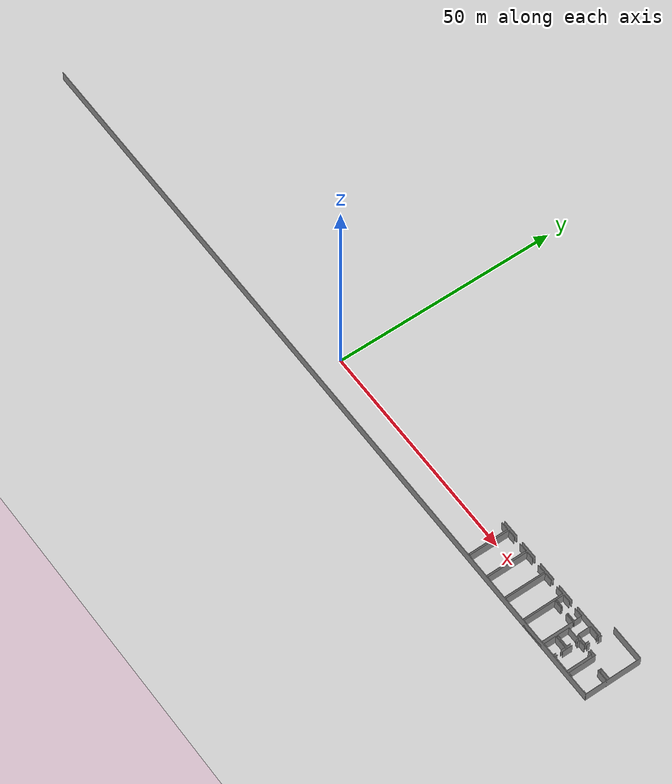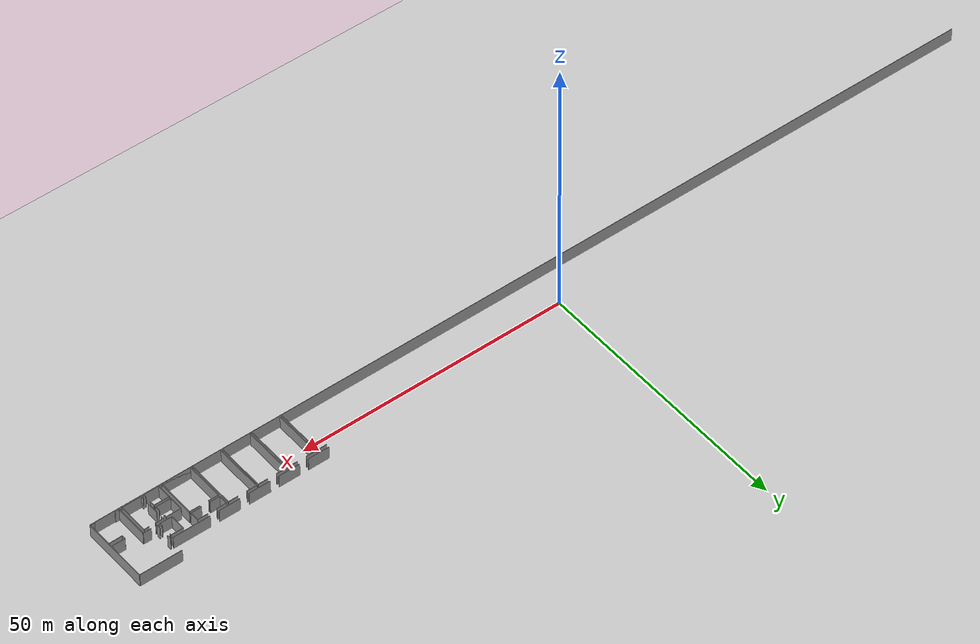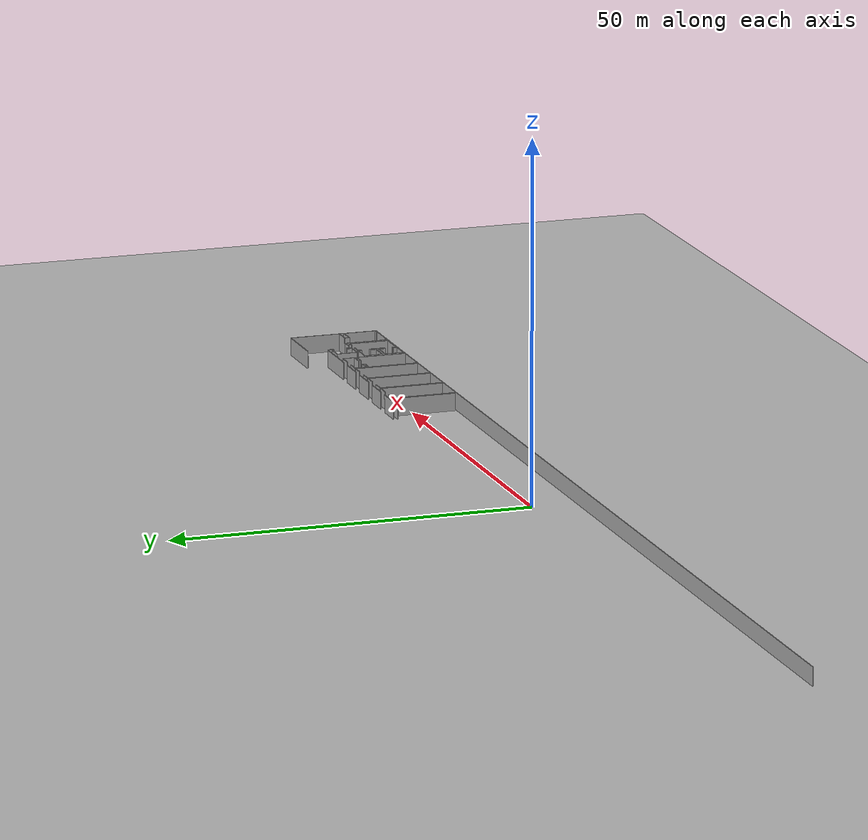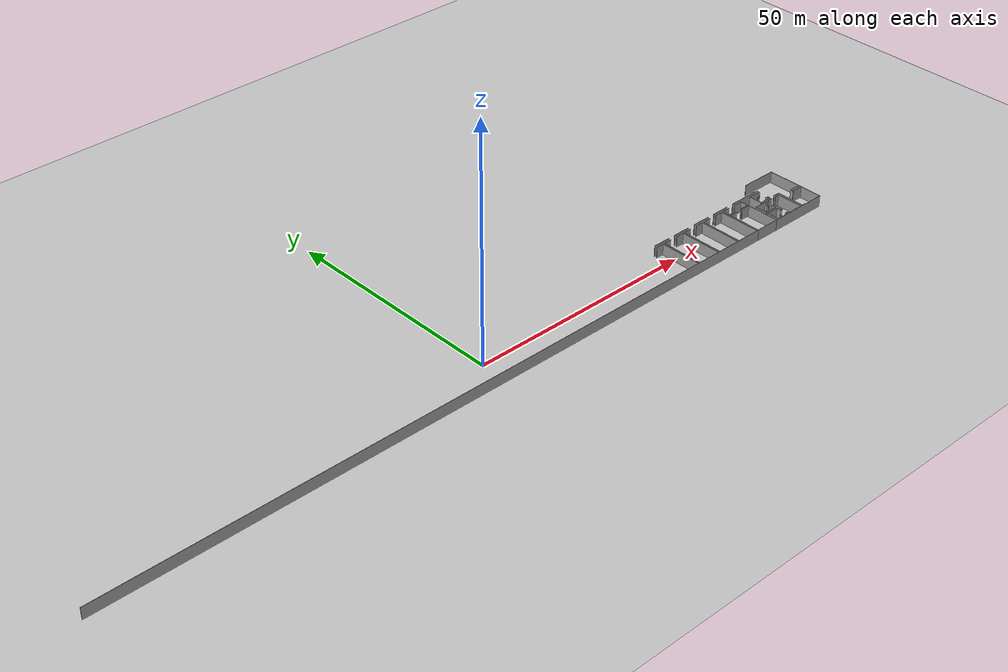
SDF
<sdf version="1.6">
 <world name="default">
  <model name="ground_plane">
   <static>1</static>
   <link name="link">
    <collision name="collision">
     <geometry><plane><normal>0 0 1</normal><size>100 100</size></plane></geometry>
     <surface><friction><ode><mu>100</mu><mu2>50</mu2></ode></friction></surface>
    </collision>
    <visual name="visual">
     <cast_shadows>0</cast_shadows>
     <geometry><plane><normal>0 0 1</normal><size>100 100</size></plane></geometry>
     <material>
      <script><uri>file://media/materials/scripts/gazebo.material</uri><name>Gazebo/Grey</name></script>
     </material>
    </visual>
   </link>
  </model>
  <model name="50015850_PLAN5">
   <static>1</static>
   <link name="Wall_1">
    <collision name="Wall_1_Collision">
     <geometry><box><size>6.90260770256 0.1 2.5</size></box></geometry>
     <pose>3.45130385128 0 1.25 0 0 0</pose>
    </collision>
    <visual name="Wall_1_Visual">
     <pose>3.45130385128 0 1.25 0 0 0</pose>
     <geometry><box><size>6.90260770256 0.1 2.5</size></box></geometry>
     <material>
      <script><uri>file://media/materials/scripts/gazebo.material</uri><name>Gazebo/Grey</name></script>
      <ambient>1 1 1 1</ambient>
     </material>
    </visual>
    <pose>163.548252014 -2.89976524332 0 0 0 3.14159265359</pose>
   </link>
   <link name="Wall_2">
    <collision name="Wall_2_Collision">
     <geometry><box><size>3.93909015925 0.1 2.5</size></box></geometry>
     <pose>1.96954507963 0 1.25 0 0 0</pose>
    </collision>
    <visual name="Wall_2_Visual">
     <pose>1.96954507963 0 1.25 0 0 0</pose>
     <geometry><box><size>3.93909015925 0.1 2.5</size></box></geometry>
     <material>
      <script><uri>file://media/materials/scripts/gazebo.material</uri><name>Gazebo/Grey</name></script>
      <ambient>1 1 1 1</ambient>
     </material>
    </visual>
    <pose>155.024681175 -2.89976524332 0 0 0 3.14159265359</pose>
   </link>
   <link name="Wall_3">
    <collision name="Wall_3_Collision">
     <geometry><box><size>4.01954190724 0.1 2.5</size></box></geometry>
     <pose>2.00977095362 0 1.25 0 0 0</pose>
    </collision>
    <visual name="Wall_3_Visual">
     <pose>2.00977095362 0 1.25 0 0 0</pose>
     <geometry><box><size>4.01954190724 0.1 2.5</size></box></geometry>
     <material>
      <script><uri>file://media/materials/scripts/gazebo.material</uri><name>Gazebo/Grey</name></script>
      <ambient>1 1 1 1</ambient>
     </material>
    </visual>
    <pose>149.454222448 -2.89976524332 0 0 0 3.14159265359</pose>
   </link>
   <link name="Wall_4">
    <collision name="Wall_4_Collision">
     <geometry><box><size>3.9758898547 0.1 2.5</size></box></geometry>
     <pose>1.98794492735 0 1.25 0 0 0</pose>
    </collision>
    <visual name="Wall_4_Visual">
     <pose>1.98794492735 0 1.25 0 0 0</pose>
     <geometry><box><size>3.9758898547 0.1 2.5</size></box></geometry>
     <material>
      <script><uri>file://media/materials/scripts/gazebo.material</uri><name>Gazebo/Grey</name></script>
      <ambient>1 1 1 1</ambient>
     </material>
    </visual>
    <pose>143.853055009 -2.89976524332 0 0 0 3.14159265359</pose>
   </link>
   <link name="Wall_5">
    <collision name="Wall_5_Collision">
     <geometry><box><size>3.92969989214 0.1 2.5</size></box></geometry>
     <pose>1.96484994607 0 1.25 0 0 0</pose>
    </collision>
    <visual name="Wall_5_Visual">
     <pose>1.96484994607 0 1.25 0 0 0</pose>
     <geometry><box><size>3.92969989214 0.1 2.5</size></box></geometry>
     <material>
      <script><uri>file://media/materials/scripts/gazebo.material</uri><name>Gazebo/Grey</name></script>
      <ambient>1 1 1 1</ambient>
     </material>
    </visual>
    <pose>138.263815748 -2.89976524332 0 0 0 3.14159265359</pose>
   </link>
   <link name="Wall_136">
    <collision name="Wall_136_Collision">
     <geometry><box><size>1.72857052218 0.1 2.5</size></box></geometry>
     <pose>0.864285261088 0 1.25 0 0 0</pose>
    </collision>
    <visual name="Wall_136_Visual">
     <pose>0.864285261088 0 1.25 0 0 0</pose>
     <geometry><box><size>1.72857052218 0.1 2.5</size></box></geometry>
     <material>
      <script><uri>file://media/materials/scripts/gazebo.material</uri><name>Gazebo/Grey</name></script>
      <ambient>1 1 1 1</ambient>
     </material>
    </visual>
    <pose>134.312036038 -3.48399213248 0 0 0 0.0</pose>
   </link>
   <link name="Wall_137">
    <collision name="Wall_137_Collision">
     <geometry><box><size>8.93863751061 0.1 2.5</size></box></geometry>
     <pose>4.46931875531 0 1.25 0 0 0</pose>
    </collision>
    <visual name="Wall_137_Visual">
     <pose>4.46931875531 0 1.25 0 0 0</pose>
     <geometry><box><size>8.93863751061 0.1 2.5</size></box></geometry>
     <material>
      <script><uri>file://media/materials/scripts/gazebo.material</uri><name>Gazebo/Grey</name></script>
      <ambient>1 1 1 1</ambient>
     </material>
    </visual>
    <pose>136.04060656 -3.48399213248 0 0 0 -1.56690653318</pose>
   </link>
   <link name="Wall_138">
    <collision name="Wall_138_Collision">
     <geometry><box><size>8.9957236216 0.1 2.5</size></box></geometry>
     <pose>4.4978618108 0 1.25 0 0 0</pose>
    </collision>
    <visual name="Wall_138_Visual">
     <pose>4.4978618108 0 1.25 0 0 0</pose>
     <geometry><box><size>8.9957236216 0.1 2.5</size></box></geometry>
     <material>
      <script><uri>file://media/materials/scripts/gazebo.material</uri><name>Gazebo/Grey</name></script>
      <ambient>1 1 1 1</ambient>
     </material>
    </visual>
    <pose>136.405050441 -12.4651989087 0 0 0 1.57079632679</pose>
   </link>
   <link name="Wall_139">
    <collision name="Wall_139_Collision">
     <geometry><box><size>1.78897278091 0.1 2.5</size></box></geometry>
     <pose>0.894486390457 0 1.25 0 0 0</pose>
    </collision>
    <visual name="Wall_139_Visual">
     <pose>0.894486390457 0 1.25 0 0 0</pose>
     <geometry><box><size>1.78897278091 0.1 2.5</size></box></geometry>
     <material>
      <script><uri>file://media/materials/scripts/gazebo.material</uri><name>Gazebo/Grey</name></script>
      <ambient>1 1 1 1</ambient>
     </material>
    </visual>
    <pose>136.405050441 -3.4694752871 0 0 0 0.0</pose>
   </link>
   <link name="Wall_140">
    <collision name="Wall_140_Collision">
     <geometry><box><size>1.79176448195 0.1 2.5</size></box></geometry>
     <pose>0.895882240975 0 1.25 0 0 0</pose>
    </collision>
    <visual name="Wall_140_Visual">
     <pose>0.895882240975 0 1.25 0 0 0</pose>
     <geometry><box><size>1.79176448195 0.1 2.5</size></box></geometry>
     <material>
      <script><uri>file://media/materials/scripts/gazebo.material</uri><name>Gazebo/Grey</name></script>
      <ambient>1 1 1 1</ambient>
     </material>
    </visual>
    <pose>139.876403781 -3.4694752871 0 0 0 0.0</pose>
   </link>
   <link name="Wall_141">
    <collision name="Wall_141_Collision">
     <geometry><box><size>8.99574540246 0.1 2.5</size></box></geometry>
     <pose>4.49787270123 0 1.25 0 0 0</pose>
    </collision>
    <visual name="Wall_141_Visual">
     <pose>4.49787270123 0 1.25 0 0 0</pose>
     <geometry><box><size>8.99574540246 0.1 2.5</size></box></geometry>
     <material>
      <script><uri>file://media/materials/scripts/gazebo.material</uri><name>Gazebo/Grey</name></script>
      <ambient>1 1 1 1</ambient>
     </material>
    </visual>
    <pose>141.668168263 -3.4694752871 0 0 0 -1.56859576271</pose>
   </link>
   <link name="Wall_142">
    <collision name="Wall_142_Collision">
     <geometry><box><size>8.99427701288 0.1 2.5</size></box></geometry>
     <pose>4.49713850644 0 1.25 0 0 0</pose>
    </collision>
    <visual name="Wall_142_Visual">
     <pose>4.49713850644 0 1.25 0 0 0</pose>
     <geometry><box><size>8.99427701288 0.1 2.5</size></box></geometry>
     <material>
      <script><uri>file://media/materials/scripts/gazebo.material</uri><name>Gazebo/Grey</name></script>
      <ambient>1 1 1 1</ambient>
     </material>
    </visual>
    <pose>142.038449337 -12.4651989087 0 0 0 1.57079632679</pose>
   </link>
   <link name="Wall_143">
    <collision name="Wall_143_Collision">
     <geometry><box><size>1.78567349787 0.1 2.5</size></box></geometry>
     <pose>0.892836748937 0 1.25 0 0 0</pose>
    </collision>
    <visual name="Wall_143_Visual">
     <pose>0.892836748937 0 1.25 0 0 0</pose>
     <geometry><box><size>1.78567349787 0.1 2.5</size></box></geometry>
     <material>
      <script><uri>file://media/materials/scripts/gazebo.material</uri><name>Gazebo/Grey</name></script>
      <ambient>1 1 1 1</ambient>
     </material>
    </visual>
    <pose>142.038449337 -3.47092189582 0 0 0 0.0</pose>
   </link>
   <link name="Wall_144">
    <collision name="Wall_144_Collision">
     <geometry><box><size>1.80216991308 0.1 2.5</size></box></geometry>
     <pose>0.901084956538 0 1.25 0 0 0</pose>
    </collision>
    <visual name="Wall_144_Visual">
     <pose>0.901084956538 0 1.25 0 0 0</pose>
     <geometry><box><size>1.80216991308 0.1 2.5</size></box></geometry>
     <material>
      <script><uri>file://media/materials/scripts/gazebo.material</uri><name>Gazebo/Grey</name></script>
      <ambient>1 1 1 1</ambient>
     </material>
    </visual>
    <pose>145.459298268 -3.47092189582 0 0 0 0.0</pose>
   </link>
   <link name="Wall_145">
    <collision name="Wall_145_Collision">
     <geometry><box><size>8.9943384594 0.1 2.5</size></box></geometry>
     <pose>4.4971692297 0 1.25 0 0 0</pose>
    </collision>
    <visual name="Wall_145_Visual">
     <pose>4.4971692297 0 1.25 0 0 0</pose>
     <geometry><box><size>8.9943384594 0.1 2.5</size></box></geometry>
     <material>
      <script><uri>file://media/materials/scripts/gazebo.material</uri><name>Gazebo/Grey</name></script>
      <ambient>1 1 1 1</ambient>
     </material>
    </visual>
    <pose>147.261468181 -3.47092189582 0 0 0 -1.57449272951</pose>
   </link>
   <link name="Wall_146">
    <collision name="Wall_146_Collision">
     <geometry><box><size>9.01100183998 0.1 2.5</size></box></geometry>
     <pose>4.50550091999 0 1.25 0 0 0</pose>
    </collision>
    <visual name="Wall_146_Visual">
     <pose>4.50550091999 0 1.25 0 0 0</pose>
     <geometry><box><size>9.01100183998 0.1 2.5</size></box></geometry>
     <material>
      <script><uri>file://media/materials/scripts/gazebo.material</uri><name>Gazebo/Grey</name></script>
      <ambient>1 1 1 1</ambient>
     </material>
    </visual>
    <pose>147.553327835 -12.4659602817 0 0 0 1.57079632679</pose>
   </link>
   <link name="Wall_147">
    <collision name="Wall_147_Collision">
     <geometry><box><size>1.85724256075 0.1 2.5</size></box></geometry>
     <pose>0.928621280376 0 1.25 0 0 0</pose>
    </collision>
    <visual name="Wall_147_Visual">
     <pose>0.928621280376 0 1.25 0 0 0</pose>
     <geometry><box><size>1.85724256075 0.1 2.5</size></box></geometry>
     <material>
      <script><uri>file://media/materials/scripts/gazebo.material</uri><name>Gazebo/Grey</name></script>
      <ambient>1 1 1 1</ambient>
     </material>
    </visual>
    <pose>147.553327835 -3.45495844172 0 0 0 0.0</pose>
   </link>
   <link name="Wall_148">
    <collision name="Wall_148_Collision">
     <geometry><box><size>1.76638538164 0.1 2.5</size></box></geometry>
     <pose>0.883192690819 0 1.25 0 0 0</pose>
    </collision>
    <visual name="Wall_148_Visual">
     <pose>0.883192690819 0 1.25 0 0 0</pose>
     <geometry><box><size>1.76638538164 0.1 2.5</size></box></geometry>
     <material>
      <script><uri>file://media/materials/scripts/gazebo.material</uri><name>Gazebo/Grey</name></script>
      <ambient>1 1 1 1</ambient>
     </material>
    </visual>
    <pose>151.074678003 -3.45495844172 0 0 0 0.0</pose>
   </link>
   <link name="Wall_149">
    <collision name="Wall_149_Collision">
     <geometry><box><size>9.01100597148 0.1 2.5</size></box></geometry>
     <pose>4.50550298574 0 1.25 0 0 0</pose>
    </collision>
    <visual name="Wall_149_Visual">
     <pose>4.50550298574 0 1.25 0 0 0</pose>
     <geometry><box><size>9.01100597148 0.1 2.5</size></box></geometry>
     <material>
      <script><uri>file://media/materials/scripts/gazebo.material</uri><name>Gazebo/Grey</name></script>
      <ambient>1 1 1 1</ambient>
     </material>
    </visual>
    <pose>152.841063384 -3.45495844172 0 0 0 -1.56983873167</pose>
   </link>
   <link name="Wall_150">
    <collision name="Wall_150_Collision">
     <geometry><box><size>1.96840302011 0.1 2.5</size></box></geometry>
     <pose>0.984201510056 0 1.25 0 0 0</pose>
    </collision>
    <visual name="Wall_150_Visual">
     <pose>0.984201510056 0 1.25 0 0 0</pose>
     <geometry><box><size>1.96840302011 0.1 2.5</size></box></geometry>
     <material>
      <script><uri>file://media/materials/scripts/gazebo.material</uri><name>Gazebo/Grey</name></script>
      <ambient>1 1 1 1</ambient>
     </material>
    </visual>
    <pose>158.588922023 -5.14576486264 0 0 0 3.14159265359</pose>
   </link>
   <link name="Wall_151">
    <collision name="Wall_151_Collision">
     <geometry><box><size>1.86739420088 0.1 2.5</size></box></geometry>
     <pose>0.933697100438 0 1.25 0 0 0</pose>
    </collision>
    <visual name="Wall_151_Visual">
     <pose>0.933697100438 0 1.25 0 0 0</pose>
     <geometry><box><size>1.86739420088 0.1 2.5</size></box></geometry>
     <material>
      <script><uri>file://media/materials/scripts/gazebo.material</uri><name>Gazebo/Grey</name></script>
      <ambient>1 1 1 1</ambient>
     </material>
    </visual>
    <pose>155.055897468 -5.14576486264 0 0 0 3.14159265359</pose>
   </link>
   <link name="Wall_152">
    <collision name="Wall_152_Collision">
     <geometry><box><size>1.69080642091 0.1 2.5</size></box></geometry>
     <pose>0.845403210456 0 1.25 0 0 0</pose>
    </collision>
    <visual name="Wall_152_Visual">
     <pose>0.845403210456 0 1.25 0 0 0</pose>
     <geometry><box><size>1.69080642091 0.1 2.5</size></box></geometry>
     <material>
      <script><uri>file://media/materials/scripts/gazebo.material</uri><name>Gazebo/Grey</name></script>
      <ambient>1 1 1 1</ambient>
     </material>
    </visual>
    <pose>153.188503268 -5.14576486264 0 0 0 1.57079632679</pose>
   </link>
   <link name="Wall_153">
    <collision name="Wall_153_Collision">
     <geometry><box><size>1.81688979126 0.1 2.5</size></box></geometry>
     <pose>0.908444895628 0 1.25 0 0 0</pose>
    </collision>
    <visual name="Wall_153_Visual">
     <pose>0.908444895628 0 1.25 0 0 0</pose>
     <geometry><box><size>1.81688979126 0.1 2.5</size></box></geometry>
     <material>
      <script><uri>file://media/materials/scripts/gazebo.material</uri><name>Gazebo/Grey</name></script>
      <ambient>1 1 1 1</ambient>
     </material>
    </visual>
    <pose>153.188503268 -3.45495844172 0 0 0 0.0</pose>
   </link>
   <link name="Wall_154">
    <collision name="Wall_154_Collision">
     <geometry><box><size>1.91662965548 0.1 2.5</size></box></geometry>
     <pose>0.958314827739 0 1.25 0 0 0</pose>
    </collision>
    <visual name="Wall_154_Visual">
     <pose>0.958314827739 0 1.25 0 0 0</pose>
     <geometry><box><size>1.91662965548 0.1 2.5</size></box></geometry>
     <material>
      <script><uri>file://media/materials/scripts/gazebo.material</uri><name>Gazebo/Grey</name></script>
      <ambient>1 1 1 1</ambient>
     </material>
    </visual>
    <pose>156.654273206 -3.45495844172 0 0 0 0.0</pose>
   </link>
   <link name="Wall_155">
    <collision name="Wall_155_Collision">
     <geometry><box><size>1.69090243455 0.1 2.5</size></box></geometry>
     <pose>0.845451217275 0 1.25 0 0 0</pose>
    </collision>
    <visual name="Wall_155_Visual">
     <pose>0.845451217275 0 1.25 0 0 0</pose>
     <geometry><box><size>1.69090243455 0.1 2.5</size></box></geometry>
     <material>
      <script><uri>file://media/materials/scripts/gazebo.material</uri><name>Gazebo/Grey</name></script>
      <ambient>1 1 1 1</ambient>
     </material>
    </visual>
    <pose>158.570902861 -3.45495844172 0 0 0 -1.56013958994</pose>
   </link>
   <link name="Wall_156">
    <collision name="Wall_156_Collision">
     <geometry><box><size>5.40930144026 0.1 2.5</size></box></geometry>
     <pose>2.70465072013 0 1.25 0 0 0</pose>
    </collision>
    <visual name="Wall_156_Visual">
     <pose>2.70465072013 0 1.25 0 0 0</pose>
     <geometry><box><size>5.40930144026 0.1 2.5</size></box></geometry>
     <material>
      <script><uri>file://media/materials/scripts/gazebo.material</uri><name>Gazebo/Grey</name></script>
      <ambient>1 1 1 1</ambient>
     </material>
    </visual>
    <pose>158.579531756 -12.6408222829 0 0 0 3.14159265359</pose>
   </link>
   <link name="Wall_157">
    <collision name="Wall_157_Collision">
     <geometry><box><size>7.16479918787 0.1 2.5</size></box></geometry>
     <pose>3.58239959393 0 1.25 0 0 0</pose>
    </collision>
    <visual name="Wall_157_Visual">
     <pose>3.58239959393 0 1.25 0 0 0</pose>
     <geometry><box><size>7.16479918787 0.1 2.5</size></box></geometry>
     <material>
      <script><uri>file://media/materials/scripts/gazebo.material</uri><name>Gazebo/Grey</name></script>
      <ambient>1 1 1 1</ambient>
     </material>
    </visual>
    <pose>153.170230315 -12.6408222829 0 0 0 1.57079632679</pose>
   </link>
   <link name="Wall_158">
    <collision name="Wall_158_Collision">
     <geometry><box><size>1.85445085972 0.1 2.5</size></box></geometry>
     <pose>0.927225429859 0 1.25 0 0 0</pose>
    </collision>
    <visual name="Wall_158_Visual">
     <pose>0.927225429859 0 1.25 0 0 0</pose>
     <geometry><box><size>1.85445085972 0.1 2.5</size></box></geometry>
     <material>
      <script><uri>file://media/materials/scripts/gazebo.material</uri><name>Gazebo/Grey</name></script>
      <ambient>1 1 1 1</ambient>
     </material>
    </visual>
    <pose>153.170230315 -5.47602309498 0 0 0 0.0</pose>
   </link>
   <link name="Wall_159">
    <collision name="Wall_159_Collision">
     <geometry><box><size>2.00647167058 0.1 2.5</size></box></geometry>
     <pose>1.00323583529 0 1.25 0 0 0</pose>
    </collision>
    <visual name="Wall_159_Visual">
     <pose>1.00323583529 0 1.25 0 0 0</pose>
     <geometry><box><size>2.00647167058 0.1 2.5</size></box></geometry>
     <material>
      <script><uri>file://media/materials/scripts/gazebo.material</uri><name>Gazebo/Grey</name></script>
      <ambient>1 1 1 1</ambient>
     </material>
    </visual>
    <pose>156.595139902 -5.47602309498 0 0 0 0.0</pose>
   </link>
   <link name="Wall_160">
    <collision name="Wall_160_Collision">
     <geometry><box><size>7.16483320956 0.1 2.5</size></box></geometry>
     <pose>3.58241660478 0 1.25 0 0 0</pose>
    </collision>
    <visual name="Wall_160_Visual">
     <pose>3.58241660478 0 1.25 0 0 0</pose>
     <geometry><box><size>7.16483320956 0.1 2.5</size></box></geometry>
     <material>
      <script><uri>file://media/materials/scripts/gazebo.material</uri><name>Gazebo/Grey</name></script>
      <ambient>1 1 1 1</ambient>
     </material>
    </visual>
    <pose>158.601611573 -5.47602309498 0 0 0 -1.5738780248</pose>
   </link>
   <link name="Wall_161">
    <collision name="Wall_161_Collision">
     <geometry><box><size>0.74614554914 0.1 2.5</size></box></geometry>
     <pose>0.37307277457 0 1.25 0 0 0</pose>
    </collision>
    <visual name="Wall_161_Visual">
     <pose>0.37307277457 0 1.25 0 0 0</pose>
     <geometry><box><size>0.74614554914 0.1 2.5</size></box></geometry>
     <material>
      <script><uri>file://media/materials/scripts/gazebo.material</uri><name>Gazebo/Grey</name></script>
      <ambient>1 1 1 1</ambient>
     </material>
    </visual>
    <pose>171.778948036 -12.5200177654 0 0 0 3.14159265359</pose>
   </link>
   <link name="Wall_162">
    <collision name="Wall_162_Collision">
     <geometry><box><size>0.778884588541 0.1 2.5</size></box></geometry>
     <pose>0.389442294271 0 1.25 0 0 0</pose>
    </collision>
    <visual name="Wall_162_Visual">
     <pose>0.389442294271 0 1.25 0 0 0</pose>
     <geometry><box><size>0.778884588541 0.1 2.5</size></box></geometry>
     <material>
      <script><uri>file://media/materials/scripts/gazebo.material</uri><name>Gazebo/Grey</name></script>
      <ambient>1 1 1 1</ambient>
     </material>
    </visual>
    <pose>167.302328532 -12.5200177654 0 0 0 3.14159265359</pose>
   </link>
   <link name="Wall_163">
    <collision name="Wall_163_Collision">
     <geometry><box><size>6.15032041114 0.1 2.5</size></box></geometry>
     <pose>3.07516020557 0 1.25 0 0 0</pose>
    </collision>
    <visual name="Wall_163_Visual">
     <pose>3.07516020557 0 1.25 0 0 0</pose>
     <geometry><box><size>6.15032041114 0.1 2.5</size></box></geometry>
     <material>
      <script><uri>file://media/materials/scripts/gazebo.material</uri><name>Gazebo/Grey</name></script>
      <ambient>1 1 1 1</ambient>
     </material>
    </visual>
    <pose>166.523443944 -12.5200177654 0 0 0 1.57079632679</pose>
   </link>
   <link name="Wall_164">
    <collision name="Wall_164_Collision">
     <geometry><box><size>1.48670769621 0.1 2.5</size></box></geometry>
     <pose>0.743353848106 0 1.25 0 0 0</pose>
    </collision>
    <visual name="Wall_164_Visual">
     <pose>0.743353848106 0 1.25 0 0 0</pose>
     <geometry><box><size>1.48670769621 0.1 2.5</size></box></geometry>
     <material>
      <script><uri>file://media/materials/scripts/gazebo.material</uri><name>Gazebo/Grey</name></script>
      <ambient>1 1 1 1</ambient>
     </material>
    </visual>
    <pose>166.523443944 -6.36969735423 0 0 0 3.14159265359</pose>
   </link>
   <link name="Wall_165">
    <collision name="Wall_165_Collision">
     <geometry><box><size>0.698559736057 0.1 2.5</size></box></geometry>
     <pose>0.349279868029 0 1.25 0 0 0</pose>
    </collision>
    <visual name="Wall_165_Visual">
     <pose>0.349279868029 0 1.25 0 0 0</pose>
     <geometry><box><size>0.698559736057 0.1 2.5</size></box></geometry>
     <material>
      <script><uri>file://media/materials/scripts/gazebo.material</uri><name>Gazebo/Grey</name></script>
      <ambient>1 1 1 1</ambient>
     </material>
    </visual>
    <pose>163.938328786 -6.36969735423 0 0 0 1.57079632679</pose>
   </link>
   <link name="Wall_166">
    <collision name="Wall_166_Collision">
     <geometry><box><size>0.782361525284 0.1 2.5</size></box></geometry>
     <pose>0.391180762642 0 1.25 0 0 0</pose>
    </collision>
    <visual name="Wall_166_Visual">
     <pose>0.391180762642 0 1.25 0 0 0</pose>
     <geometry><box><size>0.782361525284 0.1 2.5</size></box></geometry>
     <material>
      <script><uri>file://media/materials/scripts/gazebo.material</uri><name>Gazebo/Grey</name></script>
      <ambient>1 1 1 1</ambient>
     </material>
    </visual>
    <pose>163.938328786 -3.71524649451 0 0 0 1.57079632679</pose>
   </link>
   <link name="Wall_167">
    <collision name="Wall_167_Collision">
     <geometry><box><size>7.83630480299 0.1 2.5</size></box></geometry>
     <pose>3.9181524015 0 1.25 0 0 0</pose>
    </collision>
    <visual name="Wall_167_Visual">
     <pose>3.9181524015 0 1.25 0 0 0</pose>
     <geometry><box><size>7.83630480299 0.1 2.5</size></box></geometry>
     <material>
      <script><uri>file://media/materials/scripts/gazebo.material</uri><name>Gazebo/Grey</name></script>
      <ambient>1 1 1 1</ambient>
     </material>
    </visual>
    <pose>163.938328786 -0.0 0 0 0 0.0</pose>
   </link>
   <link name="Wall_168">
    <collision name="Wall_168_Collision">
     <geometry><box><size>7.18814796015 0.1 2.5</size></box></geometry>
     <pose>3.59407398008 0 1.25 0 0 0</pose>
    </collision>
    <visual name="Wall_168_Visual">
     <pose>3.59407398008 0 1.25 0 0 0</pose>
     <geometry><box><size>7.18814796015 0.1 2.5</size></box></geometry>
     <material>
      <script><uri>file://media/materials/scripts/gazebo.material</uri><name>Gazebo/Grey</name></script>
      <ambient>1 1 1 1</ambient>
     </material>
    </visual>
    <pose>171.774633589 -0.0 0 0 0 -1.57079632679</pose>
   </link>
   <link name="Wall_169">
    <collision name="Wall_169_Collision">
     <geometry><box><size>2.50314066366 0.1 2.5</size></box></geometry>
     <pose>1.25157033183 0 1.25 0 0 0</pose>
    </collision>
    <visual name="Wall_169_Visual">
     <pose>1.25157033183 0 1.25 0 0 0</pose>
     <geometry><box><size>2.50314066366 0.1 2.5</size></box></geometry>
     <material>
      <script><uri>file://media/materials/scripts/gazebo.material</uri><name>Gazebo/Grey</name></script>
      <ambient>1 1 1 1</ambient>
     </material>
    </visual>
    <pose>171.774633589 -7.18814796015 0 0 0 3.14159265359</pose>
   </link>
   <link name="Wall_170">
    <collision name="Wall_170_Collision">
     <geometry><box><size>0.686936108115 0.1 2.5</size></box></geometry>
     <pose>0.343468054057 0 1.25 0 0 0</pose>
    </collision>
    <visual name="Wall_170_Visual">
     <pose>0.343468054057 0 1.25 0 0 0</pose>
     <geometry><box><size>0.686936108115 0.1 2.5</size></box></geometry>
     <material>
      <script><uri>file://media/materials/scripts/gazebo.material</uri><name>Gazebo/Grey</name></script>
      <ambient>1 1 1 1</ambient>
     </material>
    </visual>
    <pose>169.271492926 -7.18814796015 0 0 0 -1.57079632679</pose>
   </link>
   <link name="Wall_171">
    <collision name="Wall_171_Collision">
     <geometry><box><size>2.50948543874 0.1 2.5</size></box></geometry>
     <pose>1.25474271937 0 1.25 0 0 0</pose>
    </collision>
    <visual name="Wall_171_Visual">
     <pose>1.25474271937 0 1.25 0 0 0</pose>
     <geometry><box><size>2.50948543874 0.1 2.5</size></box></geometry>
     <material>
      <script><uri>file://media/materials/scripts/gazebo.material</uri><name>Gazebo/Grey</name></script>
      <ambient>1 1 1 1</ambient>
     </material>
    </visual>
    <pose>169.271492926 -7.87508406827 0 0 0 0.0</pose>
   </link>
   <link name="Wall_172">
    <collision name="Wall_172_Collision">
     <geometry><box><size>4.64493414083 0.1 2.5</size></box></geometry>
     <pose>2.32246707042 0 1.25 0 0 0</pose>
    </collision>
    <visual name="Wall_172_Visual">
     <pose>2.32246707042 0 1.25 0 0 0</pose>
     <geometry><box><size>4.64493414083 0.1 2.5</size></box></geometry>
     <material>
      <script><uri>file://media/materials/scripts/gazebo.material</uri><name>Gazebo/Grey</name></script>
      <ambient>1 1 1 1</ambient>
     </material>
    </visual>
    <pose>171.780978364 -7.87508406827 0 0 0 -1.57123343269</pose>
   </link>
   <link name="Wall_173">
    <collision name="Wall_173_Collision">
     <geometry><box><size>3.57769177083 0.1 2.5</size></box></geometry>
     <pose>1.78884588541 0 1.25 0 0 0</pose>
    </collision>
    <visual name="Wall_173_Visual">
     <pose>1.78884588541 0 1.25 0 0 0</pose>
     <geometry><box><size>3.57769177083 0.1 2.5</size></box></geometry>
     <material>
      <script><uri>file://media/materials/scripts/gazebo.material</uri><name>Gazebo/Grey</name></script>
      <ambient>1 1 1 1</ambient>
     </material>
    </visual>
    <pose>166.008501999 -12.5118964533 0 0 0 3.14159265359</pose>
   </link>
   <link name="Wall_174">
    <collision name="Wall_174_Collision">
     <geometry><box><size>0.534230061544 0.1 2.5</size></box></geometry>
     <pose>0.267115030772 0 1.25 0 0 0</pose>
    </collision>
    <visual name="Wall_174_Visual">
     <pose>0.267115030772 0 1.25 0 0 0</pose>
     <geometry><box><size>0.534230061544 0.1 2.5</size></box></geometry>
     <material>
      <script><uri>file://media/materials/scripts/gazebo.material</uri><name>Gazebo/Grey</name></script>
      <ambient>1 1 1 1</ambient>
     </material>
    </visual>
    <pose>162.430810228 -12.5118964533 0 0 0 1.57079632679</pose>
   </link>
   <link name="Wall_175">
    <collision name="Wall_175_Collision">
     <geometry><box><size>2.24594886111 0.1 2.5</size></box></geometry>
     <pose>1.12297443056 0 1.25 0 0 0</pose>
    </collision>
    <visual name="Wall_175_Visual">
     <pose>1.12297443056 0 1.25 0 0 0</pose>
     <geometry><box><size>2.24594886111 0.1 2.5</size></box></geometry>
     <material>
      <script><uri>file://media/materials/scripts/gazebo.material</uri><name>Gazebo/Grey</name></script>
      <ambient>1 1 1 1</ambient>
     </material>
    </visual>
    <pose>162.430810228 -10.7985533913 0 0 0 1.57079632679</pose>
   </link>
   <link name="Wall_176">
    <collision name="Wall_176_Collision">
     <geometry><box><size>0.513647611192 0.1 2.5</size></box></geometry>
     <pose>0.256823805596 0 1.25 0 0 0</pose>
    </collision>
    <visual name="Wall_176_Visual">
     <pose>0.256823805596 0 1.25 0 0 0</pose>
     <geometry><box><size>0.513647611192 0.1 2.5</size></box></geometry>
     <material>
      <script><uri>file://media/materials/scripts/gazebo.material</uri><name>Gazebo/Grey</name></script>
      <ambient>1 1 1 1</ambient>
     </material>
    </visual>
    <pose>162.430810228 -7.35831482774 0 0 0 1.57079632679</pose>
   </link>
   <link name="Wall_177">
    <collision name="Wall_177_Collision">
     <geometry><box><size>1.469196117 0.1 2.5</size></box></geometry>
     <pose>0.734598058499 0 1.25 0 0 0</pose>
    </collision>
    <visual name="Wall_177_Visual">
     <pose>0.734598058499 0 1.25 0 0 0</pose>
     <geometry><box><size>1.469196117 0.1 2.5</size></box></geometry>
     <material>
      <script><uri>file://media/materials/scripts/gazebo.material</uri><name>Gazebo/Grey</name></script>
      <ambient>1 1 1 1</ambient>
     </material>
    </visual>
    <pose>162.430810228 -6.84466721655 0 0 0 0.0</pose>
   </link>
   <link name="Wall_178">
    <collision name="Wall_178_Collision">
     <geometry><box><size>0.954761753696 0.1 2.5</size></box></geometry>
     <pose>0.477380876848 0 1.25 0 0 0</pose>
    </collision>
    <visual name="Wall_178_Visual">
     <pose>0.477380876848 0 1.25 0 0 0</pose>
     <geometry><box><size>0.954761753696 0.1 2.5</size></box></geometry>
     <material>
      <script><uri>file://media/materials/scripts/gazebo.material</uri><name>Gazebo/Grey</name></script>
      <ambient>1 1 1 1</ambient>
     </material>
    </visual>
    <pose>165.052978872 -6.84466721655 0 0 0 0.0</pose>
   </link>
   <link name="Wall_179">
    <collision name="Wall_179_Collision">
     <geometry><box><size>5.66722928787 0.1 2.5</size></box></geometry>
     <pose>2.83361464393 0 1.25 0 0 0</pose>
    </collision>
    <visual name="Wall_179_Visual">
     <pose>2.83361464393 0 1.25 0 0 0</pose>
     <geometry><box><size>5.66722928787 0.1 2.5</size></box></geometry>
     <material>
      <script><uri>file://media/materials/scripts/gazebo.material</uri><name>Gazebo/Grey</name></script>
      <ambient>1 1 1 1</ambient>
     </material>
    </visual>
    <pose>166.007740626 -6.84466721655 0 0 0 -1.57066198019</pose>
   </link>
   <link name="Wall_180">
    <collision name="Wall_180_Collision">
     <geometry><box><size>2.26432332974 0.1 2.5</size></box></geometry>
     <pose>1.13216166487 0 1.25 0 0 0</pose>
    </collision>
    <visual name="Wall_180_Visual">
     <pose>1.13216166487 0 1.25 0 0 0</pose>
     <geometry><box><size>2.26432332974 0.1 2.5</size></box></geometry>
     <material>
      <script><uri>file://media/materials/scripts/gazebo.material</uri><name>Gazebo/Grey</name></script>
      <ambient>1 1 1 1</ambient>
     </material>
    </visual>
    <pose>163.49901656 -6.37449400419 0 0 0 3.14159265359</pose>
   </link>
   <link name="Wall_181">
    <collision name="Wall_181_Collision">
     <geometry><box><size>2.90692214961 0.1 2.5</size></box></geometry>
     <pose>1.4534610748 0 1.25 0 0 0</pose>
    </collision>
    <visual name="Wall_181_Visual">
     <pose>1.4534610748 0 1.25 0 0 0</pose>
     <geometry><box><size>2.90692214961 0.1 2.5</size></box></geometry>
     <material>
      <script><uri>file://media/materials/scripts/gazebo.material</uri><name>Gazebo/Grey</name></script>
      <ambient>1 1 1 1</ambient>
     </material>
    </visual>
    <pose>161.23469323 -6.37449400419 0 0 0 1.57079632679</pose>
   </link>
   <link name="Wall_182">
    <collision name="Wall_182_Collision">
     <geometry><box><size>2.27523634287 0.1 2.5</size></box></geometry>
     <pose>1.13761817144 0 1.25 0 0 0</pose>
    </collision>
    <visual name="Wall_182_Visual">
     <pose>1.13761817144 0 1.25 0 0 0</pose>
     <geometry><box><size>2.27523634287 0.1 2.5</size></box></geometry>
     <material>
      <script><uri>file://media/materials/scripts/gazebo.material</uri><name>Gazebo/Grey</name></script>
      <ambient>1 1 1 1</ambient>
     </material>
    </visual>
    <pose>161.23469323 -3.46757185458 0 0 0 0.0</pose>
   </link>
   <link name="Wall_183">
    <collision name="Wall_183_Collision">
     <geometry><box><size>0.290210012055 0.1 2.5</size></box></geometry>
     <pose>0.145105006028 0 1.25 0 0 0</pose>
    </collision>
    <visual name="Wall_183_Visual">
     <pose>0.145105006028 0 1.25 0 0 0</pose>
     <geometry><box><size>0.290210012055 0.1 2.5</size></box></geometry>
     <material>
      <script><uri>file://media/materials/scripts/gazebo.material</uri><name>Gazebo/Grey</name></script>
      <ambient>1 1 1 1</ambient>
     </material>
    </visual>
    <pose>163.509929573 -3.46757185458 0 0 0 -1.57079632679</pose>
   </link>
   <link name="Wall_184">
    <collision name="Wall_184_Collision">
     <geometry><box><size>0.733968578252 0.1 2.5</size></box></geometry>
     <pose>0.366984289126 0 1.25 0 0 0</pose>
    </collision>
    <visual name="Wall_184_Visual">
     <pose>0.366984289126 0 1.25 0 0 0</pose>
     <geometry><box><size>0.733968578252 0.1 2.5</size></box></geometry>
     <material>
      <script><uri>file://media/materials/scripts/gazebo.material</uri><name>Gazebo/Grey</name></script>
      <ambient>1 1 1 1</ambient>
     </material>
    </visual>
    <pose>163.509929573 -5.6406065605 0 0 0 -1.58566537649</pose>
   </link>
   <link name="Wall_185">
    <collision name="Wall_185_Collision">
     <geometry><box><size>2.80413679335 0.1 2.5</size></box></geometry>
     <pose>1.40206839668 0 1.25 0 0 0</pose>
    </collision>
    <visual name="Wall_185_Visual">
     <pose>1.40206839668 0 1.25 0 0 0</pose>
     <geometry><box><size>2.80413679335 0.1 2.5</size></box></geometry>
     <material>
      <script><uri>file://media/materials/scripts/gazebo.material</uri><name>Gazebo/Grey</name></script>
      <ambient>1 1 1 1</ambient>
     </material>
    </visual>
    <pose>161.988960091 -9.43896960853 0 0 0 3.14159265359</pose>
   </link>
   <link name="Wall_186">
    <collision name="Wall_186_Collision">
     <geometry><box><size>2.59678954381 0.1 2.5</size></box></geometry>
     <pose>1.29839477191 0 1.25 0 0 0</pose>
    </collision>
    <visual name="Wall_186_Visual">
     <pose>1.29839477191 0 1.25 0 0 0</pose>
     <geometry><box><size>2.59678954381 0.1 2.5</size></box></geometry>
     <material>
      <script><uri>file://media/materials/scripts/gazebo.material</uri><name>Gazebo/Grey</name></script>
      <ambient>1 1 1 1</ambient>
     </material>
    </visual>
    <pose>159.184823298 -9.43896960853 0 0 0 1.57079632679</pose>
   </link>
   <link name="Wall_187">
    <collision name="Wall_187_Collision">
     <geometry><box><size>2.77089017194 0.1 2.5</size></box></geometry>
     <pose>1.38544508597 0 1.25 0 0 0</pose>
    </collision>
    <visual name="Wall_187_Visual">
     <pose>1.38544508597 0 1.25 0 0 0</pose>
     <geometry><box><size>2.77089017194 0.1 2.5</size></box></geometry>
     <material>
      <script><uri>file://media/materials/scripts/gazebo.material</uri><name>Gazebo/Grey</name></script>
      <ambient>1 1 1 1</ambient>
     </material>
    </visual>
    <pose>159.184823298 -6.84218006472 0 0 0 0.0</pose>
   </link>
   <link name="Wall_188">
    <collision name="Wall_188_Collision">
     <geometry><box><size>0.497785673498 0.1 2.5</size></box></geometry>
     <pose>0.248892836749 0 1.25 0 0 0</pose>
    </collision>
    <visual name="Wall_188_Visual">
     <pose>0.248892836749 0 1.25 0 0 0</pose>
     <geometry><box><size>0.497785673498 0.1 2.5</size></box></geometry>
     <material>
      <script><uri>file://media/materials/scripts/gazebo.material</uri><name>Gazebo/Grey</name></script>
      <ambient>1 1 1 1</ambient>
     </material>
    </visual>
    <pose>161.95571347 -6.84218006472 0 0 0 -1.57079632679</pose>
   </link>
   <link name="Wall_189">
    <collision name="Wall_189_Collision">
     <geometry><box><size>0.868018446823 0.1 2.5</size></box></geometry>
     <pose>0.434009223411 0 1.25 0 0 0</pose>
    </collision>
    <visual name="Wall_189_Visual">
     <pose>0.434009223411 0 1.25 0 0 0</pose>
     <geometry><box><size>0.868018446823 0.1 2.5</size></box></geometry>
     <material>
      <script><uri>file://media/materials/scripts/gazebo.material</uri><name>Gazebo/Grey</name></script>
      <ambient>1 1 1 1</ambient>
     </material>
    </visual>
    <pose>161.95571347 -8.5715880972 0 0 0 -1.53248521045</pose>
   </link>
   <link name="Wall_190">
    <collision name="Wall_190_Collision">
     <geometry><box><size>2.80743607639 0.1 2.5</size></box></geometry>
     <pose>1.4037180382 0 1.25 0 0 0</pose>
    </collision>
    <visual name="Wall_190_Visual">
     <pose>1.4037180382 0 1.25 0 0 0</pose>
     <geometry><box><size>2.80743607639 0.1 2.5</size></box></geometry>
     <material>
      <script><uri>file://media/materials/scripts/gazebo.material</uri><name>Gazebo/Grey</name></script>
      <ambient>1 1 1 1</ambient>
     </material>
    </visual>
    <pose>161.979569824 -12.5654463549 0 0 0 3.14159265359</pose>
   </link>
   <link name="Wall_191">
    <collision name="Wall_191_Collision">
     <geometry><box><size>2.71155383542 0.1 2.5</size></box></geometry>
     <pose>1.35577691771 0 1.25 0 0 0</pose>
    </collision>
    <visual name="Wall_191_Visual">
     <pose>1.35577691771 0 1.25 0 0 0</pose>
     <geometry><box><size>2.71155383542 0.1 2.5</size></box></geometry>
     <material>
      <script><uri>file://media/materials/scripts/gazebo.material</uri><name>Gazebo/Grey</name></script>
      <ambient>1 1 1 1</ambient>
     </material>
    </visual>
    <pose>159.172133748 -12.5654463549 0 0 0 1.57079632679</pose>
   </link>
   <link name="Wall_192">
    <collision name="Wall_192_Collision">
     <geometry><box><size>2.79779201827 0.1 2.5</size></box></geometry>
     <pose>1.39889600914 0 1.25 0 0 0</pose>
    </collision>
    <visual name="Wall_192_Visual">
     <pose>1.39889600914 0 1.25 0 0 0</pose>
     <geometry><box><size>2.79779201827 0.1 2.5</size></box></geometry>
     <material>
      <script><uri>file://media/materials/scripts/gazebo.material</uri><name>Gazebo/Grey</name></script>
      <ambient>1 1 1 1</ambient>
     </material>
    </visual>
    <pose>159.172133748 -9.85389251951 0 0 0 0.0</pose>
   </link>
   <link name="Wall_193">
    <collision name="Wall_193_Collision">
     <geometry><box><size>0.954558720893 0.1 2.5</size></box></geometry>
     <pose>0.477279360447 0 1.25 0 0 0</pose>
    </collision>
    <visual name="Wall_193_Visual">
     <pose>0.477279360447 0 1.25 0 0 0</pose>
     <geometry><box><size>0.954558720893 0.1 2.5</size></box></geometry>
     <material>
      <script><uri>file://media/materials/scripts/gazebo.material</uri><name>Gazebo/Grey</name></script>
      <ambient>1 1 1 1</ambient>
     </material>
    </visual>
    <pose>161.969925766 -9.85389251951 0 0 0 -1.57079632679</pose>
   </link>
   <link name="Wall_194">
    <collision name="Wall_194_Collision">
     <geometry><box><size>0.584052726408 0.1 2.5</size></box></geometry>
     <pose>0.292026363204 0 1.25 0 0 0</pose>
    </collision>
    <visual name="Wall_194_Visual">
     <pose>0.292026363204 0 1.25 0 0 0</pose>
     <geometry><box><size>0.584052726408 0.1 2.5</size></box></geometry>
     <material>
      <script><uri>file://media/materials/scripts/gazebo.material</uri><name>Gazebo/Grey</name></script>
      <ambient>1 1 1 1</ambient>
     </material>
    </visual>
    <pose>161.969925766 -11.9814732568 0 0 0 -1.554283269</pose>
   </link>
   <link name="Wall_195">
    <collision name="Wall_195_Collision">
     <geometry><box><size>12.6408222829 0.1 2.5</size></box></geometry>
     <pose>6.32041114143 0 1.25 0 0 0</pose>
    </collision>
    <visual name="Wall_195_Visual">
     <pose>6.32041114143 0 1.25 0 0 0</pose>
     <geometry><box><size>12.6408222829 0.1 2.5</size></box></geometry>
     <material>
      <script><uri>file://media/materials/scripts/gazebo.material</uri><name>Gazebo/Grey</name></script>
      <ambient>1 1 1 1</ambient>
     </material>
    </visual>
    <pose>171.780978364 -12.6408222829 0 0 0 1.57079632679</pose>
   </link>
   <link name="Wall_196">
    <collision name="Wall_196_Collision">
     <geometry><box><size>171.780978364 0.1 2.5</size></box></geometry>
     <pose>85.8904891822 0 1.25 0 0 0</pose>
    </collision>
    <visual name="Wall_196_Visual">
     <pose>85.8904891822 0 1.25 0 0 0</pose>
     <geometry><box><size>171.780978364 0.1 2.5</size></box></geometry>
     <material>
      <script><uri>file://media/materials/scripts/gazebo.material</uri><name>Gazebo/Grey</name></script>
      <ambient>1 1 1 1</ambient>
     </material>
    </visual>
    <pose>171.780978364 -12.6408222829 0 0 0 3.14159265359</pose>
   </link>
   <pose>-86.75 6.34082228285 0 0 0 0</pose>
  </model>
 </world>
</sdf>
